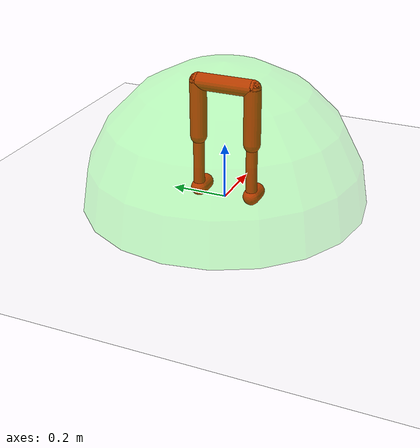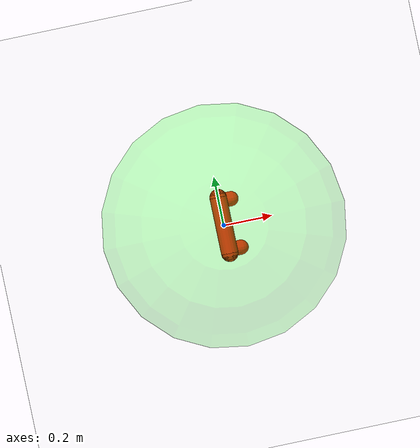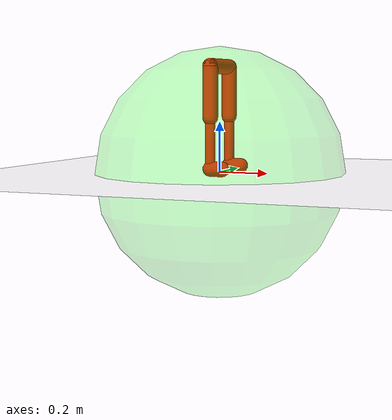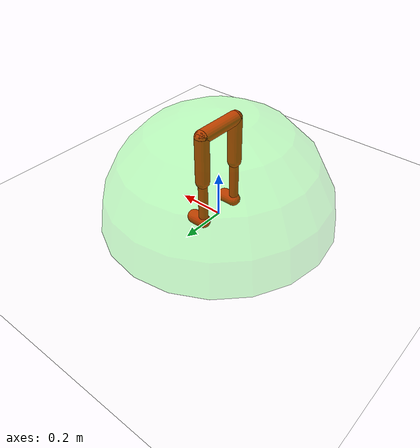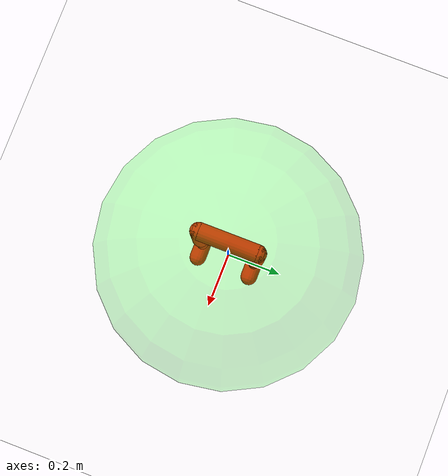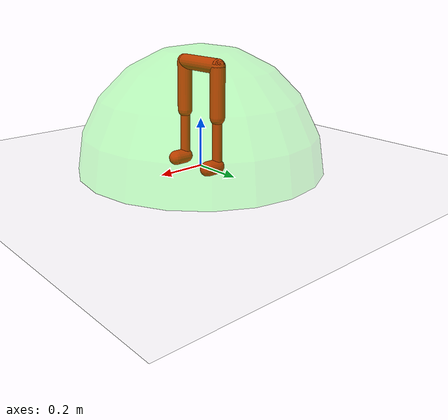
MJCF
<?xml version="1.0" encoding="utf-8"?>
<mujoco model="walker">
	<compiler angle="degree" coordinate="local" inertiafromgeom="true"></compiler>
	<size njmax="3000" nconmax="1000"></size>
	<default>
		<joint armature="1" damping="20" limited="true"></joint>
		<geom condim="3" density="50.0" friction="0.75 0.01 0.01" rgba="1 0 0  1" contype="0" conaffinity="0"></geom>
		<site size="0.05" type="sphere" rgba="0 0 1 0"></site>
	</default>
	<option timestep="0.02"></option>
	<worldbody>
		<geom name="floor" size="3.5 3.5 0.1" type="plane" conaffinity="1" condim="3" rgba="1 1 1 1" material="MatPlane"></geom>
		<body name="robot" pos="0.0 0.0 0.42" quat="1.0 0.0 0.0 0.0">
			<site name="robot" rgba="1 0 0 .1"></site>
			<camera name="vision" pos=".125 0 .2" xyaxes="0 -1 0 .4 0 1" fovy="100"></camera>
			<camera name="track" mode="track" pos="0.0 -2.0 2" xyaxes="1.0 -0.0 0 0.0 1.0 1"></camera>
			<joint armature="0" axis="1 0 0" damping="10" limited="false" name="robot_x" pos="0 0 0" stiffness="0" type="slide"></joint>
			<joint armature="0" axis="0 0 1" damping="1" limited="false" name="robot_z" pos="0 0 0" stiffness="0.1" type="hinge"></joint>
			<joint armature="0" axis="0 1 0" damping="10" limited="false" name="robot_y" pos="0 0 0" stiffness="0" type="slide"></joint>
			<geom fromto="0 0.1 0 0 -0.1 0" name="robot_geom" size="0.03" type="capsule"></geom>
			<body name="right_thigh" pos="0 0.1 0">
				<joint armature="0.01" axis="1 0 0" damping="5" name="right_hip_x" pos="0 0 0" range="-25 5" stiffness="10" type="hinge"></joint>
				<joint armature="0.01" axis="0 0 1" damping="5" name="right_hip_z" pos="0 0 0" range="-30 35" stiffness="10" type="hinge"></joint>
				<joint armature="0.01" axis="0 1 0" damping="5" name="right_hip_y" pos="0 0 0" range="-100 10" stiffness="10" type="hinge"></joint>
				<geom fromto="0 0 0 0 0 -0.2" name="right_thigh_geom" size="0.03" type="capsule"></geom>
				<body name="right_leg" pos="0 0 -0.3">
					<joint axis="0 -1 0" name="right_leg_joint" pos="0 0 0.1" range="-100 0" type="hinge"></joint>
					<geom fromto="0 0 0.1 0 0 -0.1" name="right_leg_geom" size="0.02" type="capsule"></geom>
					<body name="right_foot" pos="0.0 0.0 0.0">
						<joint axis="0 -1 0" name="right_foot_joint" pos="0.0 0.0 -0.1" range="-45 20" type="hinge"></joint>
						<geom friction="2.0" fromto="0.0 0.0 -0.1 0.05 0.0 -0.1" name="right_foot_geom" size="0.03" type="capsule"></geom>
						<geom type="sphere" pos="0.05 0.0 -0.1" size="0.02" contype="1" conaffinity="0"></geom>
						<site name="right_foot" pos="0.05 0 -0.1"></site>
					</body>
				</body>
			</body>
			<body name="left_thigh" pos="0 -0.1 0">
				<joint armature="0.01" axis="-1 0 0" damping="5" name="left_hip_x" pos="0 0 0" range="-25 5" stiffness="10" type="hinge"></joint>
				<joint armature="0.01" axis="0 0 -1" damping="5" name="left_hip_z" pos="0 0 0" range="-30 35" stiffness="10" type="hinge"></joint>
				<joint armature="0.01" axis="0 1 0" damping="5" name="left_hip_y" pos="0 0 0" range="-100 10" stiffness="10" type="hinge"></joint>
				<geom fromto="0 0 0 0 0 -0.2" name="left_thigh_geom" size="0.03" type="capsule"></geom>
				<body name="left_leg" pos="0 0 -0.3">
					<joint axis="0 -1 0" name="left_leg_joint" pos="0 0 0.1" range="-100 0" type="hinge"></joint>
					<geom fromto="0 0 0.1 0 0 -0.1" name="left_leg_geom" size="0.02" type="capsule"></geom>
					<body name="left_foot" pos="0.0 0.0 0.0">
						<joint axis="0 -1 0" name="left_foot_joint" pos="0.0 0.0 -0.1" range="-45 20" type="hinge"></joint>
						<geom friction="2.0" fromto="0.0 0.0 -0.1 0.05 0.0 -0.1" name="left_foot_geom" size="0.03" type="capsule"></geom>
						<geom type="sphere" pos="0.05 0.0 -0.1" size="0.02" contype="1" conaffinity="0"></geom>
						<site name="left_foot" pos="0.05 0 -0.1"></site>
					</body>
				</body>
			</body>
		</body>
		<body name="goal" pos="0.0 0.0 0.0" quat="1.0 0.0 0.0 0.0">
			<joint type="slide" axis="1 0 0" name="goal_x" damping="1" limited="false"></joint>
			<joint type="slide" axis="0 1 0" name="goal_y" damping="1" limited="false"></joint>
			<geom name="goal" type="sphere" size="0.5" rgba="0.0 1.0 0.0 0.25" group="0" contype="0" conaffinity="0"></geom>
		</body>
		<body name="hazard0" pos="0.0 0.0 0.02" quat="1.0 0.0 0.0 0.0">
			<joint type="slide" axis="1 0 0" name="hazard0_x" damping="1" limited="false"></joint>
			<joint type="slide" axis="0 1 0" name="hazard0_y" damping="1" limited="false"></joint>
			<geom name="hazard0" type="cylinder" size="0.3 0.01" rgba="0.0 0.0 1.0 0.25" group="3" contype="0" conaffinity="0"></geom>
		</body>
		<body name="hazard1" pos="0.0 0.0 0.02" quat="1.0 0.0 0.0 0.0">
			<joint type="slide" axis="1 0 0" name="hazard1_x" damping="1" limited="false"></joint>
			<joint type="slide" axis="0 1 0" name="hazard1_y" damping="1" limited="false"></joint>
			<geom name="hazard1" type="cylinder" size="0.3 0.01" rgba="0.0 0.0 1.0 0.25" group="3" contype="0" conaffinity="0"></geom>
		</body>
		<body name="hazard2" pos="0.0 0.0 0.02" quat="1.0 0.0 0.0 0.0">
			<joint type="slide" axis="1 0 0" name="hazard2_x" damping="1" limited="false"></joint>
			<joint type="slide" axis="0 1 0" name="hazard2_y" damping="1" limited="false"></joint>
			<geom name="hazard2" type="cylinder" size="0.3 0.01" rgba="0.0 0.0 1.0 0.25" group="3" contype="0" conaffinity="0"></geom>
		</body>
		<body name="hazard3" pos="0.0 0.0 0.02" quat="1.0 0.0 0.0 0.0">
			<joint type="slide" axis="1 0 0" name="hazard3_x" damping="1" limited="false"></joint>
			<joint type="slide" axis="0 1 0" name="hazard3_y" damping="1" limited="false"></joint>
			<geom name="hazard3" type="cylinder" size="0.3 0.01" rgba="0.0 0.0 1.0 0.25" group="3" contype="0" conaffinity="0"></geom>
		</body>
		<body name="hazard4" pos="0.0 0.0 0.02" quat="1.0 0.0 0.0 0.0">
			<joint type="slide" axis="1 0 0" name="hazard4_x" damping="1" limited="false"></joint>
			<joint type="slide" axis="0 1 0" name="hazard4_y" damping="1" limited="false"></joint>
			<geom name="hazard4" type="cylinder" size="0.3 0.01" rgba="0.0 0.0 1.0 0.25" group="3" contype="0" conaffinity="0"></geom>
		</body>
		<body name="hazard5" pos="0.0 0.0 0.02" quat="1.0 0.0 0.0 0.0">
			<joint type="slide" axis="1 0 0" name="hazard5_x" damping="1" limited="false"></joint>
			<joint type="slide" axis="0 1 0" name="hazard5_y" damping="1" limited="false"></joint>
			<geom name="hazard5" type="cylinder" size="0.3 0.01" rgba="0.0 0.0 1.0 0.25" group="3" contype="0" conaffinity="0"></geom>
		</body>
		<body name="hazard6" pos="0.0 0.0 0.02" quat="1.0 0.0 0.0 0.0">
			<joint type="slide" axis="1 0 0" name="hazard6_x" damping="1" limited="false"></joint>
			<joint type="slide" axis="0 1 0" name="hazard6_y" damping="1" limited="false"></joint>
			<geom name="hazard6" type="cylinder" size="0.3 0.01" rgba="0.0 0.0 1.0 0.25" group="3" contype="0" conaffinity="0"></geom>
		</body>
		<body name="hazard7" pos="0.0 0.0 0.02" quat="1.0 0.0 0.0 0.0">
			<joint type="slide" axis="1 0 0" name="hazard7_x" damping="1" limited="false"></joint>
			<joint type="slide" axis="0 1 0" name="hazard7_y" damping="1" limited="false"></joint>
			<geom name="hazard7" type="cylinder" size="0.3 0.01" rgba="0.0 0.0 1.0 0.25" group="3" contype="0" conaffinity="0"></geom>
		</body>
		<light cutoff="100" diffuse="1 1 1" dir="0 0 -1" directional="true" exponent="1" pos="0 0 0.5" specular="0 0 0" castshadow="false"></light>
		<camera name="fixednear" pos="0 -2 2" zaxis="0 -1 1"></camera>
		<camera name="fixedfar" pos="0 -5 5" zaxis="0 -1 1"></camera>
	</worldbody>
	<sensor>
		<touch site="right_foot" name="touch_right_foot"></touch>
		<touch site="left_foot" name="touch_left_foot"></touch>
		<jointpos joint="right_hip_x" name="jointpos_right_hip_x"></jointpos>
		<jointpos joint="right_hip_z" name="jointpos_right_hip_z"></jointpos>
		<jointpos joint="right_hip_y" name="jointpos_right_hip_y"></jointpos>
		<jointpos joint="right_leg_joint" name="jointpos_right_leg"></jointpos>
		<jointpos joint="right_foot_joint" name="jointpos_right_foot"></jointpos>
		<jointpos joint="left_hip_x" name="jointpos_left_hip_x"></jointpos>
		<jointpos joint="left_hip_z" name="jointpos_left_hip_z"></jointpos>
		<jointpos joint="left_hip_y" name="jointpos_left_hip_y"></jointpos>
		<jointpos joint="left_leg_joint" name="jointpos_left_leg"></jointpos>
		<jointpos joint="left_foot_joint" name="jointpos_left_foot"></jointpos>
		<jointvel joint="right_hip_x" name="jointvel_right_hip_x"></jointvel>
		<jointvel joint="right_hip_z" name="jointvel_right_hip_z"></jointvel>
		<jointvel joint="right_hip_y" name="jointvel_right_hip_y"></jointvel>
		<jointvel joint="right_leg_joint" name="jointvel_right_leg"></jointvel>
		<jointvel joint="right_foot_joint" name="jointvel_right_foot"></jointvel>
		<jointvel joint="left_hip_x" name="jointvel_left_hip_x"></jointvel>
		<jointvel joint="left_hip_z" name="jointvel_left_hip_z"></jointvel>
		<jointvel joint="left_hip_y" name="jointvel_left_hip_y"></jointvel>
		<jointvel joint="left_leg_joint" name="jointvel_left_leg"></jointvel>
		<jointvel joint="left_foot_joint" name="jointvel_left_foot"></jointvel>
		<accelerometer site="robot" name="accelerometer"></accelerometer>
		<velocimeter site="robot" name="velocimeter"></velocimeter>
		<gyro site="robot" name="gyro"></gyro>
		<magnetometer site="robot" name="magnetometer"></magnetometer>
		<subtreecom body="robot" name="subtreecom"></subtreecom>
		<subtreelinvel body="robot" name="subtreelinvel"></subtreelinvel>
		<subtreeangmom body="robot" name="subtreeangmom"></subtreeangmom>
	</sensor>
	<actuator>
		<motor ctrllimited="true" ctrlrange="-1.0 1.0" gear="10" joint="right_hip_x" name="right_hip_x"></motor>
		<motor ctrllimited="true" ctrlrange="-1.0 1.0" gear="10" joint="right_hip_z" name="right_hip_z"></motor>
		<motor ctrllimited="true" ctrlrange="-1.0 1.0" gear="30" joint="right_hip_y" name="right_hip_y"></motor>
		<motor ctrllimited="true" ctrlrange="-1.0 1.0" gear="30" joint="right_leg_joint"></motor>
		<motor ctrllimited="true" ctrlrange="-1.0 1.0" gear="40" joint="right_foot_joint"></motor>
		<motor ctrllimited="true" ctrlrange="-1.0 1.0" gear="10" joint="left_hip_x" name="left_hip_x"></motor>
		<motor ctrllimited="true" ctrlrange="-1.0 1.0" gear="10" joint="left_hip_z" name="left_hip_z"></motor>
		<motor ctrllimited="true" ctrlrange="-1.0 1.0" gear="30" joint="left_hip_y" name="left_hip_y"></motor>
		<motor ctrllimited="true" ctrlrange="-1.0 1.0" gear="30" joint="left_leg_joint"></motor>
		<motor ctrllimited="true" ctrlrange="-1.0 1.0" gear="40" joint="left_foot_joint"></motor>
	</actuator>
	<equality>
	</equality>
	<asset>
		<texture name="texplane" builtin="checker" height="100" width="100" rgb1="0.7 0.7 0.7" rgb2="0.8 0.8 0.8" type="2d"></texture>
		<texture type="skybox" builtin="gradient" rgb1="0.527 0.582 0.906" rgb2="0.1 0.1 0.35" width="800" height="800" markrgb="1 1 1" mark="random" random="0.001"></texture>
		<material name="MatPlane" reflectance="0.1" shininess="0.1" specular="0.1" texrepeat="10 10" texture="texplane"></material>
	</asset>
</mujoco>
